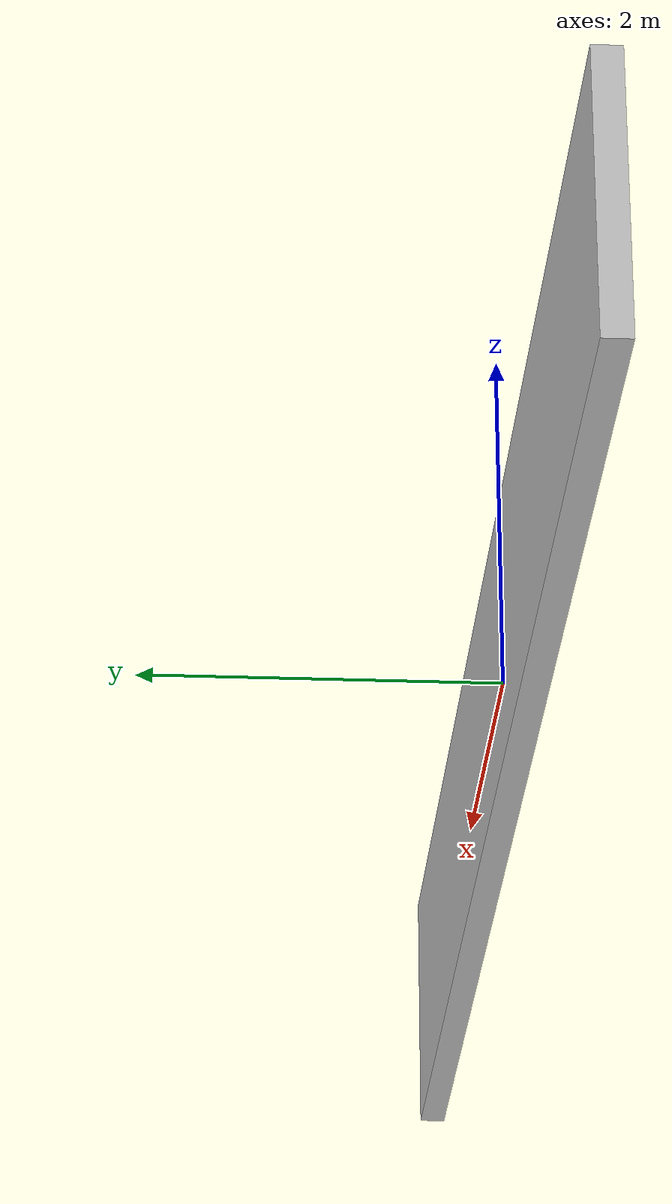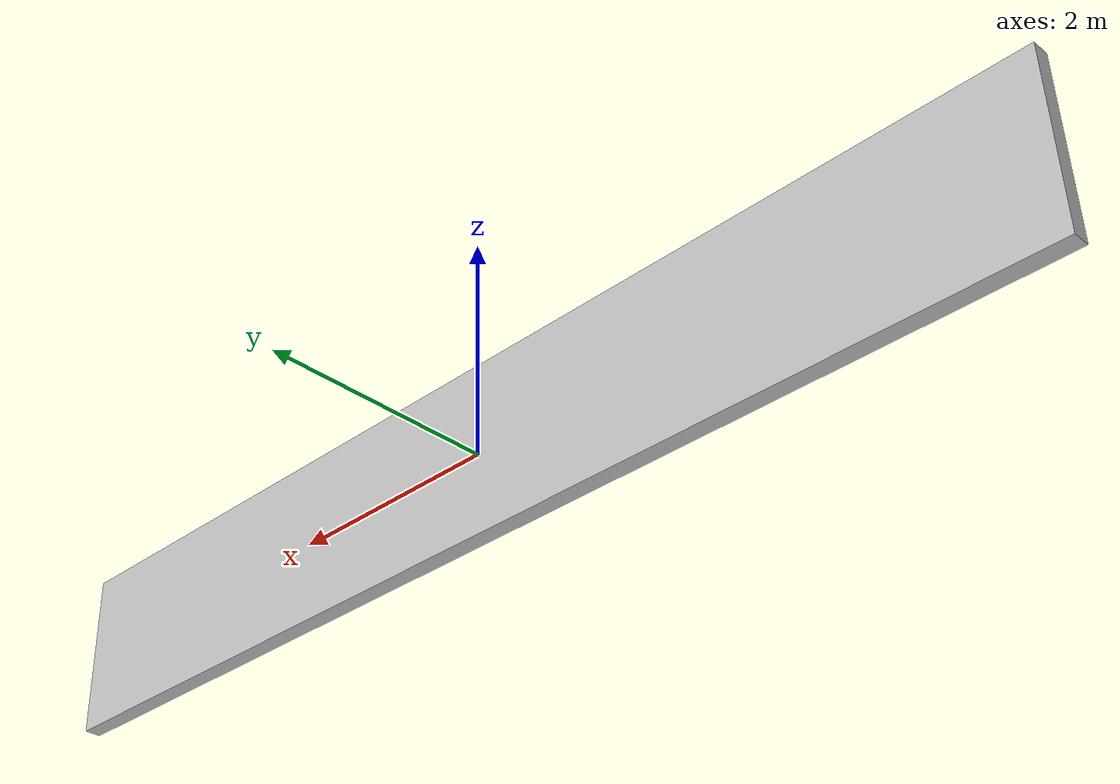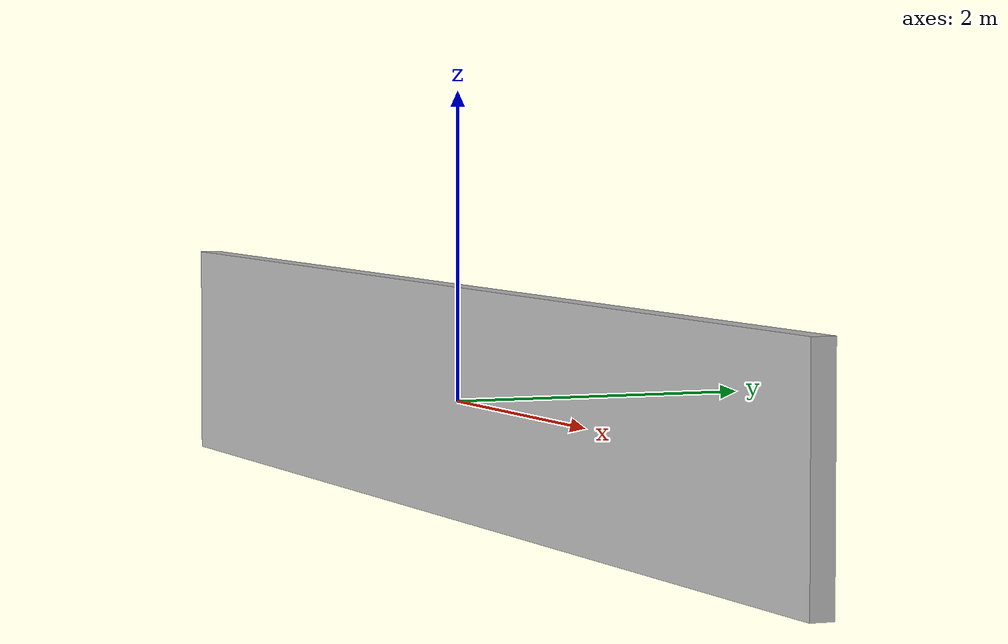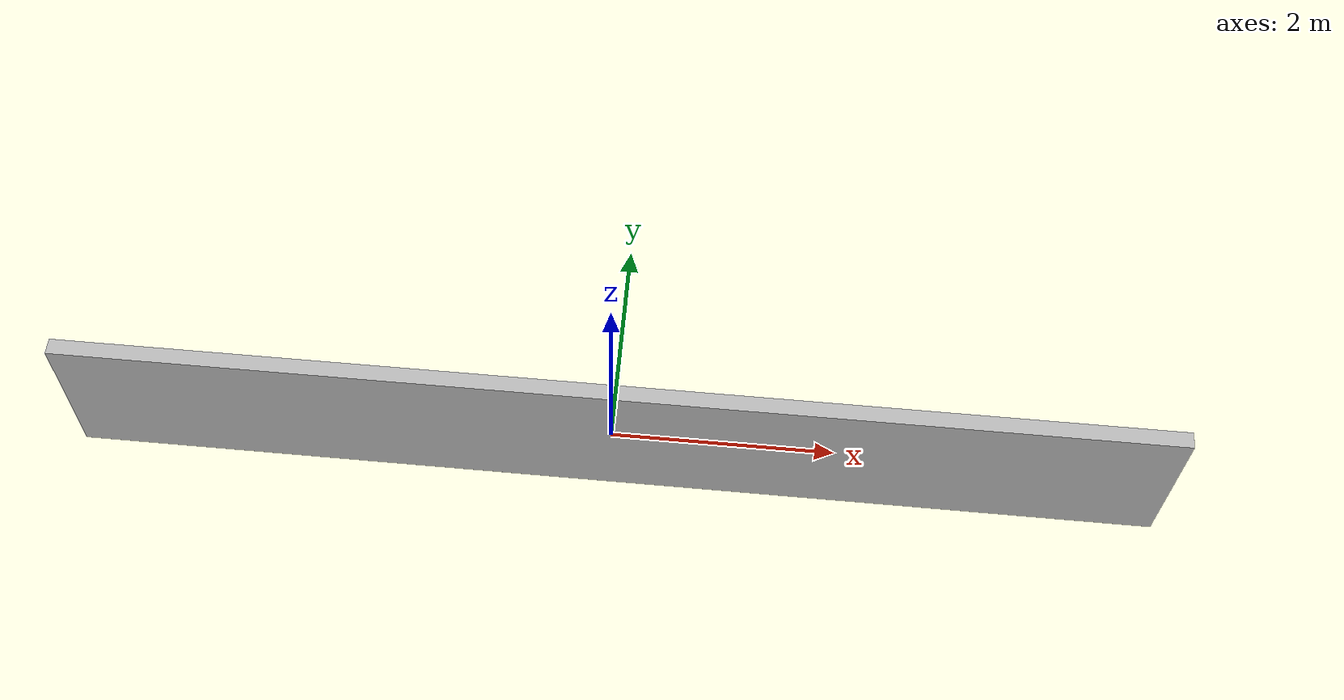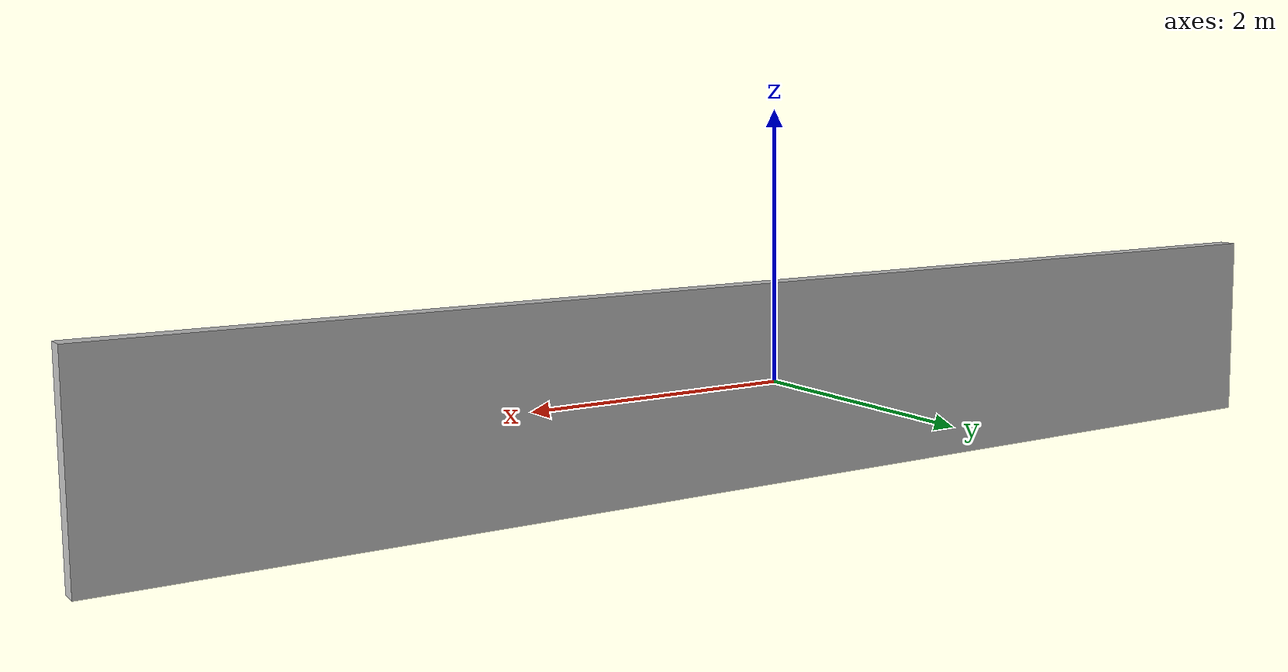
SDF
<?xml version="1.0" ?>
<sdf version="1.7">
  <model name="fence">
    <static>true</static>

    <link name="link">
      <!-- collision ON (so the car can’t leave the map if you want) -->
      <collision name="collision">
        <geometry>
          <box><size>10 0.15 1.5</size></box>
        </geometry>
      </collision>

      <visual name="visual">
        <geometry>
          <box><size>10 0.15 1.5</size></box>
        </geometry>
        <material>
          <ambient>0.75 0.75 0.75 1</ambient>
          <diffuse>0.75 0.75 0.75 1</diffuse>
        </material>
      </visual>
    </link>
  </model>
</sdf>
